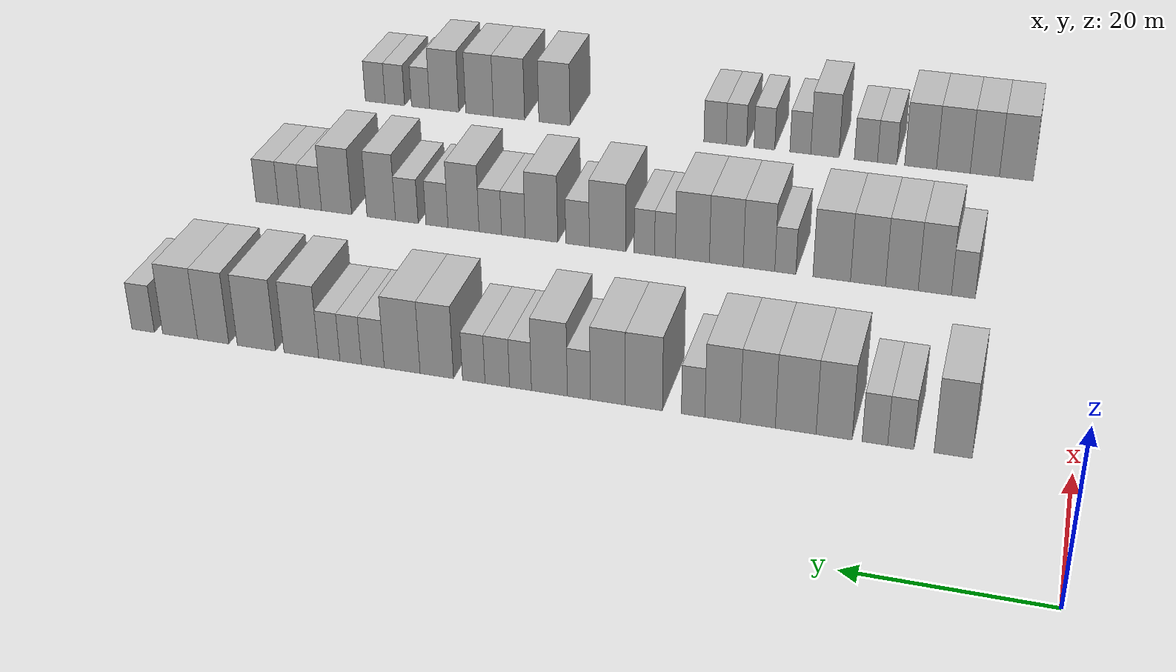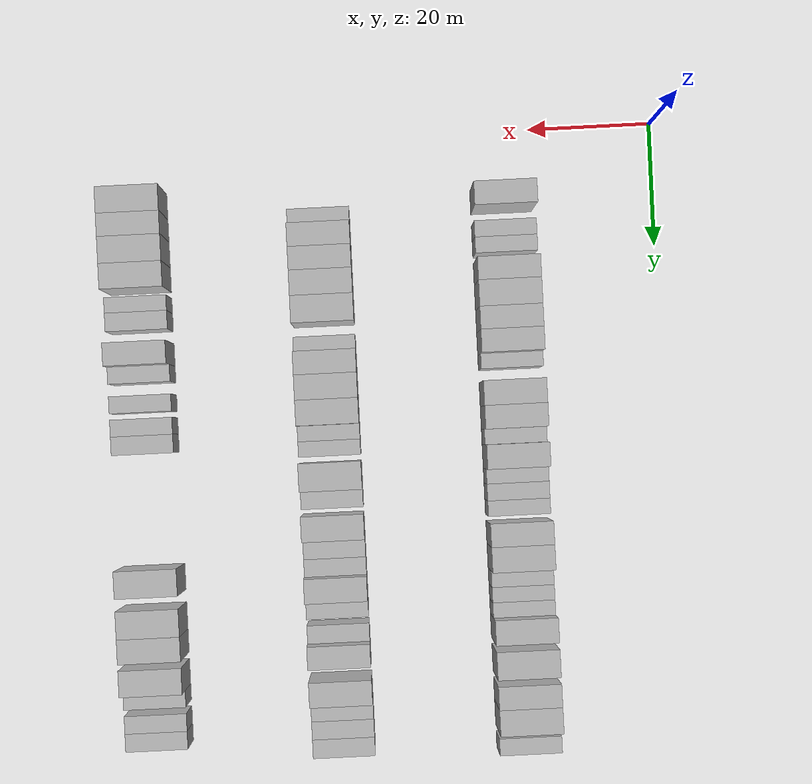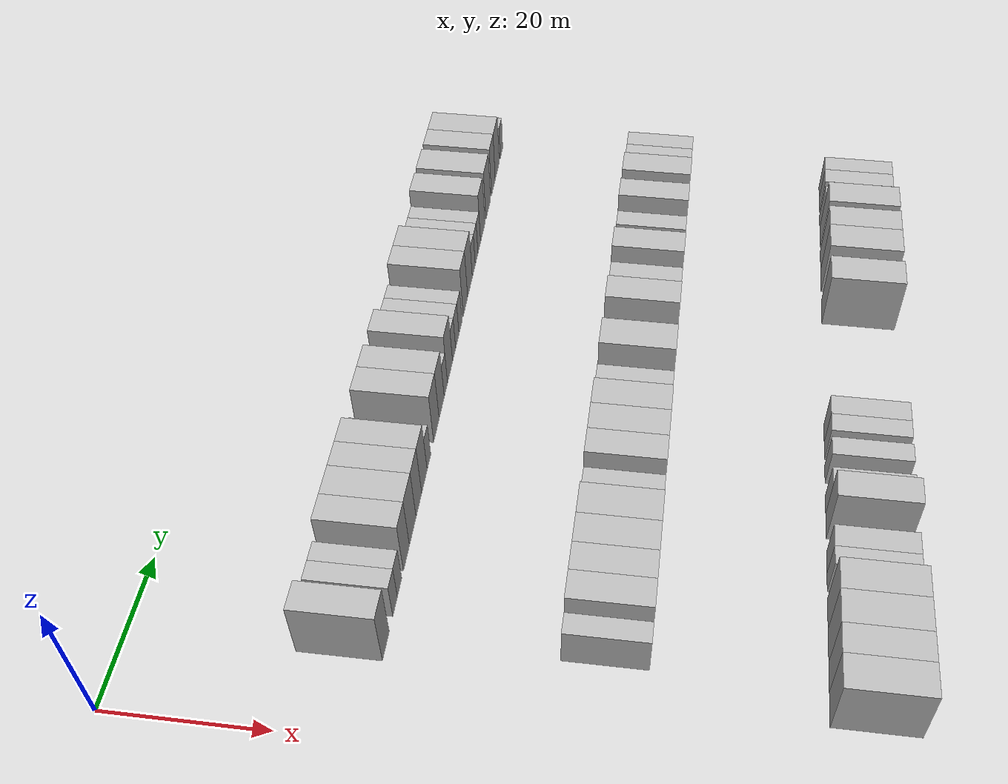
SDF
<sdf version="1.6">
 <world name="default">
  <model name="building_63">
   <static>1</static>
   <pose>25.0000 11.6347 0 0.000000 0.000000 0.000000</pose>
   <link name="link">
    <pose>0 0 4.50 0 0 0</pose>
    <collision name="collision"><geometry><box><size>10.0000 3.7601 9.0000</size></box></geometry></collision>
    <visual name="visual">
     <cast_shadows>0</cast_shadows>
     <geometry><box><size>10.0000 3.7601 9.0000</size></box></geometry>
     <material>
      <script>
       <uri>model://HANNAS_wall/materials/scripts</uri>
       <uri>model://HANNAS_wall/materials/textures</uri>
       <name>vrc/HANNAS_wall</name>
      </script>
     </material>
    </visual>
   </link>
  </model>
  <model name="building_64">
   <static>1</static>
   <pose>25.0000 16.8259 0 0.000000 0.000000 0.000000</pose>
   <link name="link">
    <pose>0 0 3.00 0 0 0</pose>
    <collision name="collision"><geometry><box><size>10.0000 2.6224 6.0000</size></box></geometry></collision>
    <visual name="visual">
     <cast_shadows>0</cast_shadows>
     <geometry><box><size>10.0000 2.6224 6.0000</size></box></geometry>
     <material>
      <script>
       <uri>model://HANNAS_wall/materials/scripts</uri>
       <uri>model://HANNAS_wall/materials/textures</uri>
       <name>vrc/HANNAS_wall</name>
      </script>
     </material>
    </visual>
   </link>
  </model>
  <model name="building_65">
   <static>1</static>
   <pose>25.0000 19.4246 0 0.000000 0.000000 0.000000</pose>
   <link name="link">
    <pose>0 0 3.00 0 0 0</pose>
    <collision name="collision"><geometry><box><size>10.0000 2.5749 6.0000</size></box></geometry></collision>
    <visual name="visual">
     <cast_shadows>0</cast_shadows>
     <geometry><box><size>10.0000 2.5749 6.0000</size></box></geometry>
     <material>
      <script>
       <uri>model://HANNAS_wall/materials/scripts</uri>
       <uri>model://HANNAS_wall/materials/textures</uri>
       <name>vrc/HANNAS_wall</name>
      </script>
     </material>
    </visual>
   </link>
  </model>
  <model name="building_66">
   <static>1</static>
   <pose>25.0000 23.5431 0 0.000000 0.000000 0.000000</pose>
   <link name="link">
    <pose>0 0 4.50 0 0 0</pose>
    <collision name="collision"><geometry><box><size>10.0000 3.6621 9.0000</size></box></geometry></collision>
    <visual name="visual">
     <cast_shadows>0</cast_shadows>
     <geometry><box><size>10.0000 3.6621 9.0000</size></box></geometry>
     <material>
      <script>
       <uri>model://HANNAS_wall/materials/scripts</uri>
       <uri>model://HANNAS_wall/materials/textures</uri>
       <name>vrc/HANNAS_wall</name>
      </script>
     </material>
    </visual>
   </link>
  </model>
  <model name="building_67">
   <static>1</static>
   <pose>25.0000 27.4623 0 0.000000 0.000000 0.000000</pose>
   <link name="link">
    <pose>0 0 4.50 0 0 0</pose>
    <collision name="collision"><geometry><box><size>10.0000 4.1763 9.0000</size></box></geometry></collision>
    <visual name="visual">
     <cast_shadows>0</cast_shadows>
     <geometry><box><size>10.0000 4.1763 9.0000</size></box></geometry>
     <material>
      <script>
       <uri>model://HANNAS_wall/materials/scripts</uri>
       <uri>model://HANNAS_wall/materials/textures</uri>
       <name>vrc/HANNAS_wall</name>
      </script>
     </material>
    </visual>
   </link>
  </model>
  <model name="building_68">
   <static>1</static>
   <pose>25.0000 31.3696 0 0.000000 0.000000 0.000000</pose>
   <link name="link">
    <pose>0 0 4.50 0 0 0</pose>
    <collision name="collision"><geometry><box><size>10.0000 3.6383 9.0000</size></box></geometry></collision>
    <visual name="visual">
     <cast_shadows>0</cast_shadows>
     <geometry><box><size>10.0000 3.6383 9.0000</size></box></geometry>
     <material>
      <script>
       <uri>model://HANNAS_wall/materials/scripts</uri>
       <uri>model://HANNAS_wall/materials/textures</uri>
       <name>vrc/HANNAS_wall</name>
      </script>
     </material>
    </visual>
   </link>
  </model>
  <model name="building_69">
   <static>1</static>
   <pose>25.0000 35.0305 0 0.000000 0.000000 0.000000</pose>
   <link name="link">
    <pose>0 0 4.50 0 0 0</pose>
    <collision name="collision"><geometry><box><size>10.0000 3.6835 9.0000</size></box></geometry></collision>
    <visual name="visual">
     <cast_shadows>0</cast_shadows>
     <geometry><box><size>10.0000 3.6835 9.0000</size></box></geometry>
     <material>
      <script>
       <uri>model://HANNAS_wall/materials/scripts</uri>
       <uri>model://HANNAS_wall/materials/textures</uri>
       <name>vrc/HANNAS_wall</name>
      </script>
     </material>
    </visual>
   </link>
  </model>
  <model name="building_70">
   <static>1</static>
   <pose>25.0000 38.1041 0 0.000000 0.000000 0.000000</pose>
   <link name="link">
    <pose>0 0 3.00 0 0 0</pose>
    <collision name="collision"><geometry><box><size>10.0000 2.4638 6.0000</size></box></geometry></collision>
    <visual name="visual">
     <cast_shadows>0</cast_shadows>
     <geometry><box><size>10.0000 2.4638 6.0000</size></box></geometry>
     <material>
      <script>
       <uri>model://HANNAS_wall/materials/scripts</uri>
       <uri>model://HANNAS_wall/materials/textures</uri>
       <name>vrc/HANNAS_wall</name>
      </script>
     </material>
    </visual>
   </link>
  </model>
  <model name="building_71">
   <static>1</static>
   <pose>25.0000 43.3074 0 0.000000 0.000000 0.000000</pose>
   <link name="link">
    <pose>0 0 4.50 0 0 0</pose>
    <collision name="collision"><geometry><box><size>10.0000 3.9428 9.0000</size></box></geometry></collision>
    <visual name="visual">
     <cast_shadows>0</cast_shadows>
     <geometry><box><size>10.0000 3.9428 9.0000</size></box></geometry>
     <material>
      <script>
       <uri>model://HANNAS_wall/materials/scripts</uri>
       <uri>model://HANNAS_wall/materials/textures</uri>
       <name>vrc/HANNAS_wall</name>
      </script>
     </material>
    </visual>
   </link>
  </model>
  <model name="building_72">
   <static>1</static>
   <pose>25.0000 47.1563 0 0.000000 0.000000 0.000000</pose>
   <link name="link">
    <pose>0 0 4.50 0 0 0</pose>
    <collision name="collision"><geometry><box><size>10.0000 3.7549 9.0000</size></box></geometry></collision>
    <visual name="visual">
     <cast_shadows>0</cast_shadows>
     <geometry><box><size>10.0000 3.7549 9.0000</size></box></geometry>
     <material>
      <script>
       <uri>model://HANNAS_wall/materials/scripts</uri>
       <uri>model://HANNAS_wall/materials/textures</uri>
       <name>vrc/HANNAS_wall</name>
      </script>
     </material>
    </visual>
   </link>
  </model>
  <model name="building_73">
   <static>1</static>
   <pose>25.0000 50.2749 0 0.000000 0.000000 0.000000</pose>
   <link name="link">
    <pose>0 0 3.00 0 0 0</pose>
    <collision name="collision"><geometry><box><size>10.0000 2.4824 6.0000</size></box></geometry></collision>
    <visual name="visual">
     <cast_shadows>0</cast_shadows>
     <geometry><box><size>10.0000 2.4824 6.0000</size></box></geometry>
     <material>
      <script>
       <uri>model://HANNAS_wall/materials/scripts</uri>
       <uri>model://HANNAS_wall/materials/textures</uri>
       <name>vrc/HANNAS_wall</name>
      </script>
     </material>
    </visual>
   </link>
  </model>
  <model name="building_74">
   <static>1</static>
   <pose>25.0000 53.4746 0 0.000000 0.000000 0.000000</pose>
   <link name="link">
    <pose>0 0 4.50 0 0 0</pose>
    <collision name="collision"><geometry><box><size>10.0000 3.9169 9.0000</size></box></geometry></collision>
    <visual name="visual">
     <cast_shadows>0</cast_shadows>
     <geometry><box><size>10.0000 3.9169 9.0000</size></box></geometry>
     <material>
      <script>
       <uri>model://HANNAS_wall/materials/scripts</uri>
       <uri>model://HANNAS_wall/materials/textures</uri>
       <name>vrc/HANNAS_wall</name>
      </script>
     </material>
    </visual>
   </link>
  </model>
  <model name="building_75">
   <static>1</static>
   <pose>25.0000 56.6359 0 0.000000 0.000000 0.000000</pose>
   <link name="link">
    <pose>0 0 3.00 0 0 0</pose>
    <collision name="collision"><geometry><box><size>10.0000 2.4057 6.0000</size></box></geometry></collision>
    <visual name="visual">
     <cast_shadows>0</cast_shadows>
     <geometry><box><size>10.0000 2.4057 6.0000</size></box></geometry>
     <material>
      <script>
       <uri>model://HANNAS_wall/materials/scripts</uri>
       <uri>model://HANNAS_wall/materials/textures</uri>
       <name>vrc/HANNAS_wall</name>
      </script>
     </material>
    </visual>
   </link>
  </model>
  <model name="building_76">
   <static>1</static>
   <pose>25.0000 59.1966 0 0.000000 0.000000 0.000000</pose>
   <link name="link">
    <pose>0 0 3.00 0 0 0</pose>
    <collision name="collision"><geometry><box><size>10.0000 2.7157 6.0000</size></box></geometry></collision>
    <visual name="visual">
     <cast_shadows>0</cast_shadows>
     <geometry><box><size>10.0000 2.7157 6.0000</size></box></geometry>
     <material>
      <script>
       <uri>model://HANNAS_wall/materials/scripts</uri>
       <uri>model://HANNAS_wall/materials/textures</uri>
       <name>vrc/HANNAS_wall</name>
      </script>
     </material>
    </visual>
   </link>
  </model>
  <model name="building_77">
   <static>1</static>
   <pose>25.0000 61.8009 0 0.000000 0.000000 0.000000</pose>
   <link name="link">
    <pose>0 0 3.00 0 0 0</pose>
    <collision name="collision"><geometry><box><size>10.0000 2.4929 6.0000</size></box></geometry></collision>
    <visual name="visual">
     <cast_shadows>0</cast_shadows>
     <geometry><box><size>10.0000 2.4929 6.0000</size></box></geometry>
     <material>
      <script>
       <uri>model://HANNAS_wall/materials/scripts</uri>
       <uri>model://HANNAS_wall/materials/textures</uri>
       <name>vrc/HANNAS_wall</name>
      </script>
     </material>
    </visual>
   </link>
  </model>
  <model name="building_78">
   <static>1</static>
   <pose>25.0000 65.9230 0 0.000000 0.000000 0.000000</pose>
   <link name="link">
    <pose>0 0 4.50 0 0 0</pose>
    <collision name="collision"><geometry><box><size>10.0000 3.7513 9.0000</size></box></geometry></collision>
    <visual name="visual">
     <cast_shadows>0</cast_shadows>
     <geometry><box><size>10.0000 3.7513 9.0000</size></box></geometry>
     <material>
      <script>
       <uri>model://HANNAS_wall/materials/scripts</uri>
       <uri>model://HANNAS_wall/materials/textures</uri>
       <name>vrc/HANNAS_wall</name>
      </script>
     </material>
    </visual>
   </link>
  </model>
  <model name="building_79">
   <static>1</static>
   <pose>25.0000 69.8228 0 0.000000 0.000000 0.000000</pose>
   <link name="link">
    <pose>0 0 4.50 0 0 0</pose>
    <collision name="collision"><geometry><box><size>10.0000 4.0482 9.0000</size></box></geometry></collision>
    <visual name="visual">
     <cast_shadows>0</cast_shadows>
     <geometry><box><size>10.0000 4.0482 9.0000</size></box></geometry>
     <material>
      <script>
       <uri>model://HANNAS_wall/materials/scripts</uri>
       <uri>model://HANNAS_wall/materials/textures</uri>
       <name>vrc/HANNAS_wall</name>
      </script>
     </material>
    </visual>
   </link>
  </model>
  <model name="building_80">
   <static>1</static>
   <pose>25.0000 73.1573 0 0.000000 0.000000 0.000000</pose>
   <link name="link">
    <pose>0 0 3.00 0 0 0</pose>
    <collision name="collision"><geometry><box><size>10.0000 2.6209 6.0000</size></box></geometry></collision>
    <visual name="visual">
     <cast_shadows>0</cast_shadows>
     <geometry><box><size>10.0000 2.6209 6.0000</size></box></geometry>
     <material>
      <script>
       <uri>model://HANNAS_wall/materials/scripts</uri>
       <uri>model://HANNAS_wall/materials/textures</uri>
       <name>vrc/HANNAS_wall</name>
      </script>
     </material>
    </visual>
   </link>
  </model>
  <model name="building_81">
   <static>1</static>
   <pose>25.0000 75.6925 0 0.000000 0.000000 0.000000</pose>
   <link name="link">
    <pose>0 0 3.00 0 0 0</pose>
    <collision name="collision"><geometry><box><size>10.0000 2.4494 6.0000</size></box></geometry></collision>
    <visual name="visual">
     <cast_shadows>0</cast_shadows>
     <geometry><box><size>10.0000 2.4494 6.0000</size></box></geometry>
     <material>
      <script>
       <uri>model://HANNAS_wall/materials/scripts</uri>
       <uri>model://HANNAS_wall/materials/textures</uri>
       <name>vrc/HANNAS_wall</name>
      </script>
     </material>
    </visual>
   </link>
  </model>
  <model name="building_82">
   <static>1</static>
   <pose>25.0000 78.1473 0 0.000000 0.000000 0.000000</pose>
   <link name="link">
    <pose>0 0 3.00 0 0 0</pose>
    <collision name="collision"><geometry><box><size>10.0000 2.4601 6.0000</size></box></geometry></collision>
    <visual name="visual">
     <cast_shadows>0</cast_shadows>
     <geometry><box><size>10.0000 2.4601 6.0000</size></box></geometry>
     <material>
      <script>
       <uri>model://HANNAS_wall/materials/scripts</uri>
       <uri>model://HANNAS_wall/materials/textures</uri>
       <name>vrc/HANNAS_wall</name>
      </script>
     </material>
    </visual>
   </link>
  </model>
  <model name="building_83">
   <static>1</static>
   <pose>25.0000 81.3884 0 0.000000 0.000000 0.000000</pose>
   <link name="link">
    <pose>0 0 4.50 0 0 0</pose>
    <collision name="collision"><geometry><box><size>10.0000 4.0221 9.0000</size></box></geometry></collision>
    <visual name="visual">
     <cast_shadows>0</cast_shadows>
     <geometry><box><size>10.0000 4.0221 9.0000</size></box></geometry>
     <material>
      <script>
       <uri>model://HANNAS_wall/materials/scripts</uri>
       <uri>model://HANNAS_wall/materials/textures</uri>
       <name>vrc/HANNAS_wall</name>
      </script>
     </material>
    </visual>
   </link>
  </model>
  <model name="building_84">
   <static>1</static>
   <pose>25.0000 86.6411 0 0.000000 0.000000 0.000000</pose>
   <link name="link">
    <pose>0 0 4.50 0 0 0</pose>
    <collision name="collision"><geometry><box><size>10.0000 4.4832 9.0000</size></box></geometry></collision>
    <visual name="visual">
     <cast_shadows>0</cast_shadows>
     <geometry><box><size>10.0000 4.4832 9.0000</size></box></geometry>
     <material>
      <script>
       <uri>model://HANNAS_wall/materials/scripts</uri>
       <uri>model://HANNAS_wall/materials/textures</uri>
       <name>vrc/HANNAS_wall</name>
      </script>
     </material>
    </visual>
   </link>
  </model>
  <model name="building_85">
   <static>1</static>
   <pose>25.0000 91.7443 0 0.000000 0.000000 0.000000</pose>
   <link name="link">
    <pose>0 0 4.50 0 0 0</pose>
    <collision name="collision"><geometry><box><size>10.0000 3.7233 9.0000</size></box></geometry></collision>
    <visual name="visual">
     <cast_shadows>0</cast_shadows>
     <geometry><box><size>10.0000 3.7233 9.0000</size></box></geometry>
     <material>
      <script>
       <uri>model://HANNAS_wall/materials/scripts</uri>
       <uri>model://HANNAS_wall/materials/textures</uri>
       <name>vrc/HANNAS_wall</name>
      </script>
     </material>
    </visual>
   </link>
  </model>
  <model name="building_86">
   <static>1</static>
   <pose>25.0000 95.6959 0 0.000000 0.000000 0.000000</pose>
   <link name="link">
    <pose>0 0 4.50 0 0 0</pose>
    <collision name="collision"><geometry><box><size>10.0000 4.1798 9.0000</size></box></geometry></collision>
    <visual name="visual">
     <cast_shadows>0</cast_shadows>
     <geometry><box><size>10.0000 4.1798 9.0000</size></box></geometry>
     <material>
      <script>
       <uri>model://HANNAS_wall/materials/scripts</uri>
       <uri>model://HANNAS_wall/materials/textures</uri>
       <name>vrc/HANNAS_wall</name>
      </script>
     </material>
    </visual>
   </link>
  </model>
  <model name="building_87">
   <static>1</static>
   <pose>25.0000 100.1499 0 0.000000 0.000000 0.000000</pose>
   <link name="link">
    <pose>0 0 3.00 0 0 0</pose>
    <collision name="collision"><geometry><box><size>10.0000 2.7283 6.0000</size></box></geometry></collision>
    <visual name="visual">
     <cast_shadows>0</cast_shadows>
     <geometry><box><size>10.0000 2.7283 6.0000</size></box></geometry>
     <material>
      <script>
       <uri>model://HANNAS_wall/materials/scripts</uri>
       <uri>model://HANNAS_wall/materials/textures</uri>
       <name>vrc/HANNAS_wall</name>
      </script>
     </material>
    </visual>
   </link>
  </model>
  <model name="building_201">
   <static>1</static>
   <pose>55.0000 13.5459 0 0.000000 0.000000 0.000000</pose>
   <link name="link">
    <pose>0 0 3.00 0 0 0</pose>
    <collision name="collision"><geometry><box><size>10.0000 2.7010 6.0000</size></box></geometry></collision>
    <visual name="visual">
     <cast_shadows>0</cast_shadows>
     <geometry><box><size>10.0000 2.7010 6.0000</size></box></geometry>
     <material>
      <script>
       <uri>model://HANNAS_wall/materials/scripts</uri>
       <uri>model://HANNAS_wall/materials/textures</uri>
       <name>vrc/HANNAS_wall</name>
      </script>
     </material>
    </visual>
   </link>
  </model>
  <model name="building_202">
   <static>1</static>
   <pose>55.0000 16.7719 0 0.000000 0.000000 0.000000</pose>
   <link name="link">
    <pose>0 0 4.50 0 0 0</pose>
    <collision name="collision"><geometry><box><size>10.0000 3.7510 9.0000</size></box></geometry></collision>
    <visual name="visual">
     <cast_shadows>0</cast_shadows>
     <geometry><box><size>10.0000 3.7510 9.0000</size></box></geometry>
     <material>
      <script>
       <uri>model://HANNAS_wall/materials/scripts</uri>
       <uri>model://HANNAS_wall/materials/textures</uri>
       <name>vrc/HANNAS_wall</name>
      </script>
     </material>
    </visual>
   </link>
  </model>
  <model name="building_203">
   <static>1</static>
   <pose>55.0000 20.5124 0 0.000000 0.000000 0.000000</pose>
   <link name="link">
    <pose>0 0 4.50 0 0 0</pose>
    <collision name="collision"><geometry><box><size>10.0000 3.7301 9.0000</size></box></geometry></collision>
    <visual name="visual">
     <cast_shadows>0</cast_shadows>
     <geometry><box><size>10.0000 3.7301 9.0000</size></box></geometry>
     <material>
      <script>
       <uri>model://HANNAS_wall/materials/scripts</uri>
       <uri>model://HANNAS_wall/materials/textures</uri>
       <name>vrc/HANNAS_wall</name>
      </script>
     </material>
    </visual>
   </link>
  </model>
  <model name="building_204">
   <static>1</static>
   <pose>55.0000 24.3906 0 0.000000 0.000000 0.000000</pose>
   <link name="link">
    <pose>0 0 4.50 0 0 0</pose>
    <collision name="collision"><geometry><box><size>10.0000 4.0262 9.0000</size></box></geometry></collision>
    <visual name="visual">
     <cast_shadows>0</cast_shadows>
     <geometry><box><size>10.0000 4.0262 9.0000</size></box></geometry>
     <material>
      <script>
       <uri>model://HANNAS_wall/materials/scripts</uri>
       <uri>model://HANNAS_wall/materials/textures</uri>
       <name>vrc/HANNAS_wall</name>
      </script>
     </material>
    </visual>
   </link>
  </model>
  <model name="building_205">
   <static>1</static>
   <pose>55.0000 28.5856 0 0.000000 0.000000 0.000000</pose>
   <link name="link">
    <pose>0 0 4.50 0 0 0</pose>
    <collision name="collision"><geometry><box><size>10.0000 4.3638 9.0000</size></box></geometry></collision>
    <visual name="visual">
     <cast_shadows>0</cast_shadows>
     <geometry><box><size>10.0000 4.3638 9.0000</size></box></geometry>
     <material>
      <script>
       <uri>model://HANNAS_wall/materials/scripts</uri>
       <uri>model://HANNAS_wall/materials/textures</uri>
       <name>vrc/HANNAS_wall</name>
      </script>
     </material>
    </visual>
   </link>
  </model>
  <model name="building_206">
   <static>1</static>
   <pose>55.0000 34.0003 0 0.000000 0.000000 0.000000</pose>
   <link name="link">
    <pose>0 0 3.00 0 0 0</pose>
    <collision name="collision"><geometry><box><size>10.0000 2.4656 6.0000</size></box></geometry></collision>
    <visual name="visual">
     <cast_shadows>0</cast_shadows>
     <geometry><box><size>10.0000 2.4656 6.0000</size></box></geometry>
     <material>
      <script>
       <uri>model://HANNAS_wall/materials/scripts</uri>
       <uri>model://HANNAS_wall/materials/textures</uri>
       <name>vrc/HANNAS_wall</name>
      </script>
     </material>
    </visual>
   </link>
  </model>
  <model name="building_207">
   <static>1</static>
   <pose>55.0000 37.1039 0 0.000000 0.000000 0.000000</pose>
   <link name="link">
    <pose>0 0 4.50 0 0 0</pose>
    <collision name="collision"><geometry><box><size>10.0000 3.7415 9.0000</size></box></geometry></collision>
    <visual name="visual">
     <cast_shadows>0</cast_shadows>
     <geometry><box><size>10.0000 3.7415 9.0000</size></box></geometry>
     <material>
      <script>
       <uri>model://HANNAS_wall/materials/scripts</uri>
       <uri>model://HANNAS_wall/materials/textures</uri>
       <name>vrc/HANNAS_wall</name>
      </script>
     </material>
    </visual>
   </link>
  </model>
  <model name="building_208">
   <static>1</static>
   <pose>55.0000 40.9870 0 0.000000 0.000000 0.000000</pose>
   <link name="link">
    <pose>0 0 4.50 0 0 0</pose>
    <collision name="collision"><geometry><box><size>10.0000 4.0248 9.0000</size></box></geometry></collision>
    <visual name="visual">
     <cast_shadows>0</cast_shadows>
     <geometry><box><size>10.0000 4.0248 9.0000</size></box></geometry>
     <material>
      <script>
       <uri>model://HANNAS_wall/materials/scripts</uri>
       <uri>model://HANNAS_wall/materials/textures</uri>
       <name>vrc/HANNAS_wall</name>
      </script>
     </material>
    </visual>
   </link>
  </model>
  <model name="building_209">
   <static>1</static>
   <pose>55.0000 45.0407 0 0.000000 0.000000 0.000000</pose>
   <link name="link">
    <pose>0 0 4.50 0 0 0</pose>
    <collision name="collision"><geometry><box><size>10.0000 4.0825 9.0000</size></box></geometry></collision>
    <visual name="visual">
     <cast_shadows>0</cast_shadows>
     <geometry><box><size>10.0000 4.0825 9.0000</size></box></geometry>
     <material>
      <script>
       <uri>model://HANNAS_wall/materials/scripts</uri>
       <uri>model://HANNAS_wall/materials/textures</uri>
       <name>vrc/HANNAS_wall</name>
      </script>
     </material>
    </visual>
   </link>
  </model>
  <model name="building_210">
   <static>1</static>
   <pose>55.0000 48.3329 0 0.000000 0.000000 0.000000</pose>
   <link name="link">
    <pose>0 0 3.00 0 0 0</pose>
    <collision name="collision"><geometry><box><size>10.0000 2.5018 6.0000</size></box></geometry></collision>
    <visual name="visual">
     <cast_shadows>0</cast_shadows>
     <geometry><box><size>10.0000 2.5018 6.0000</size></box></geometry>
     <material>
      <script>
       <uri>model://HANNAS_wall/materials/scripts</uri>
       <uri>model://HANNAS_wall/materials/textures</uri>
       <name>vrc/HANNAS_wall</name>
      </script>
     </material>
    </visual>
   </link>
  </model>
  <model name="building_211">
   <static>1</static>
   <pose>55.0000 50.8295 0 0.000000 0.000000 0.000000</pose>
   <link name="link">
    <pose>0 0 3.00 0 0 0</pose>
    <collision name="collision"><geometry><box><size>10.0000 2.4913 6.0000</size></box></geometry></collision>
    <visual name="visual">
     <cast_shadows>0</cast_shadows>
     <geometry><box><size>10.0000 2.4913 6.0000</size></box></geometry>
     <material>
      <script>
       <uri>model://HANNAS_wall/materials/scripts</uri>
       <uri>model://HANNAS_wall/materials/textures</uri>
       <name>vrc/HANNAS_wall</name>
      </script>
     </material>
    </visual>
   </link>
  </model>
  <model name="building_212">
   <static>1</static>
   <pose>55.0000 55.3235 0 0.000000 0.000000 0.000000</pose>
   <link name="link">
    <pose>0 0 4.50 0 0 0</pose>
    <collision name="collision"><geometry><box><size>10.0000 4.4968 9.0000</size></box></geometry></collision>
    <visual name="visual">
     <cast_shadows>0</cast_shadows>
     <geometry><box><size>10.0000 4.4968 9.0000</size></box></geometry>
     <material>
      <script>
       <uri>model://HANNAS_wall/materials/scripts</uri>
       <uri>model://HANNAS_wall/materials/textures</uri>
       <name>vrc/HANNAS_wall</name>
      </script>
     </material>
    </visual>
   </link>
  </model>
  <model name="building_213">
   <static>1</static>
   <pose>55.0000 59.0298 0 0.000000 0.000000 0.000000</pose>
   <link name="link">
    <pose>0 0 3.00 0 0 0</pose>
    <collision name="collision"><geometry><box><size>10.0000 2.9156 6.0000</size></box></geometry></collision>
    <visual name="visual">
     <cast_shadows>0</cast_shadows>
     <geometry><box><size>10.0000 2.9156 6.0000</size></box></geometry>
     <material>
      <script>
       <uri>model://HANNAS_wall/materials/scripts</uri>
       <uri>model://HANNAS_wall/materials/textures</uri>
       <name>vrc/HANNAS_wall</name>
      </script>
     </material>
    </visual>
   </link>
  </model>
  <model name="building_214">
   <static>1</static>
   <pose>55.0000 63.5155 0 0.000000 0.000000 0.000000</pose>
   <link name="link">
    <pose>0 0 4.50 0 0 0</pose>
    <collision name="collision"><geometry><box><size>10.0000 4.0559 9.0000</size></box></geometry></collision>
    <visual name="visual">
     <cast_shadows>0</cast_shadows>
     <geometry><box><size>10.0000 4.0559 9.0000</size></box></geometry>
     <material>
      <script>
       <uri>model://HANNAS_wall/materials/scripts</uri>
       <uri>model://HANNAS_wall/materials/textures</uri>
       <name>vrc/HANNAS_wall</name>
      </script>
     </material>
    </visual>
   </link>
  </model>
  <model name="building_215">
   <static>1</static>
   <pose>55.0000 67.0353 0 0.000000 0.000000 0.000000</pose>
   <link name="link">
    <pose>0 0 3.00 0 0 0</pose>
    <collision name="collision"><geometry><box><size>10.0000 2.9835 6.0000</size></box></geometry></collision>
    <visual name="visual">
     <cast_shadows>0</cast_shadows>
     <geometry><box><size>10.0000 2.9835 6.0000</size></box></geometry>
     <material>
      <script>
       <uri>model://HANNAS_wall/materials/scripts</uri>
       <uri>model://HANNAS_wall/materials/textures</uri>
       <name>vrc/HANNAS_wall</name>
      </script>
     </material>
    </visual>
   </link>
  </model>
  <model name="building_216">
   <static>1</static>
   <pose>55.0000 69.9450 0 0.000000 0.000000 0.000000</pose>
   <link name="link">
    <pose>0 0 3.00 0 0 0</pose>
    <collision name="collision"><geometry><box><size>10.0000 2.8358 6.0000</size></box></geometry></collision>
    <visual name="visual">
     <cast_shadows>0</cast_shadows>
     <geometry><box><size>10.0000 2.8358 6.0000</size></box></geometry>
     <material>
      <script>
       <uri>model://HANNAS_wall/materials/scripts</uri>
       <uri>model://HANNAS_wall/materials/textures</uri>
       <name>vrc/HANNAS_wall</name>
      </script>
     </material>
    </visual>
   </link>
  </model>
  <model name="building_217">
   <static>1</static>
   <pose>55.0000 73.3389 0 0.000000 0.000000 0.000000</pose>
   <link name="link">
    <pose>0 0 4.50 0 0 0</pose>
    <collision name="collision"><geometry><box><size>10.0000 3.9521 9.0000</size></box></geometry></collision>
    <visual name="visual">
     <cast_shadows>0</cast_shadows>
     <geometry><box><size>10.0000 3.9521 9.0000</size></box></geometry>
     <material>
      <script>
       <uri>model://HANNAS_wall/materials/scripts</uri>
       <uri>model://HANNAS_wall/materials/textures</uri>
       <name>vrc/HANNAS_wall</name>
      </script>
     </material>
    </visual>
   </link>
  </model>
  <model name="building_218">
   <static>1</static>
   <pose>55.0000 76.7329 0 0.000000 0.000000 0.000000</pose>
   <link name="link">
    <pose>0 0 3.00 0 0 0</pose>
    <collision name="collision"><geometry><box><size>10.0000 2.8358 6.0000</size></box></geometry></collision>
    <visual name="visual">
     <cast_shadows>0</cast_shadows>
     <geometry><box><size>10.0000 2.8358 6.0000</size></box></geometry>
     <material>
      <script>
       <uri>model://HANNAS_wall/materials/scripts</uri>
       <uri>model://HANNAS_wall/materials/textures</uri>
       <name>vrc/HANNAS_wall</name>
      </script>
     </material>
    </visual>
   </link>
  </model>
  <model name="building_219">
   <static>1</static>
   <pose>55.0000 80.6168 0 0.000000 0.000000 0.000000</pose>
   <link name="link">
    <pose>0 0 3.00 0 0 0</pose>
    <collision name="collision"><geometry><box><size>10.0000 2.9320 6.0000</size></box></geometry></collision>
    <visual name="visual">
     <cast_shadows>0</cast_shadows>
     <geometry><box><size>10.0000 2.9320 6.0000</size></box></geometry>
     <material>
      <script>
       <uri>model://HANNAS_wall/materials/scripts</uri>
       <uri>model://HANNAS_wall/materials/textures</uri>
       <name>vrc/HANNAS_wall</name>
      </script>
     </material>
    </visual>
   </link>
  </model>
  <model name="building_220">
   <static>1</static>
   <pose>55.0000 83.9354 0 0.000000 0.000000 0.000000</pose>
   <link name="link">
    <pose>0 0 4.50 0 0 0</pose>
    <collision name="collision"><geometry><box><size>10.0000 3.7052 9.0000</size></box></geometry></collision>
    <visual name="visual">
     <cast_shadows>0</cast_shadows>
     <geometry><box><size>10.0000 3.7052 9.0000</size></box></geometry>
     <material>
      <script>
       <uri>model://HANNAS_wall/materials/scripts</uri>
       <uri>model://HANNAS_wall/materials/textures</uri>
       <name>vrc/HANNAS_wall</name>
      </script>
     </material>
    </visual>
   </link>
  </model>
  <model name="building_221">
   <static>1</static>
   <pose>55.0000 89.7722 0 0.000000 0.000000 0.000000</pose>
   <link name="link">
    <pose>0 0 4.50 0 0 0</pose>
    <collision name="collision"><geometry><box><size>10.0000 3.9684 9.0000</size></box></geometry></collision>
    <visual name="visual">
     <cast_shadows>0</cast_shadows>
     <geometry><box><size>10.0000 3.9684 9.0000</size></box></geometry>
     <material>
      <script>
       <uri>model://HANNAS_wall/materials/scripts</uri>
       <uri>model://HANNAS_wall/materials/textures</uri>
       <name>vrc/HANNAS_wall</name>
      </script>
     </material>
    </visual>
   </link>
  </model>
  <model name="building_222">
   <static>1</static>
   <pose>55.0000 93.1732 0 0.000000 0.000000 0.000000</pose>
   <link name="link">
    <pose>0 0 3.00 0 0 0</pose>
    <collision name="collision"><geometry><box><size>10.0000 2.8336 6.0000</size></box></geometry></collision>
    <visual name="visual">
     <cast_shadows>0</cast_shadows>
     <geometry><box><size>10.0000 2.8336 6.0000</size></box></geometry>
     <material>
      <script>
       <uri>model://HANNAS_wall/materials/scripts</uri>
       <uri>model://HANNAS_wall/materials/textures</uri>
       <name>vrc/HANNAS_wall</name>
      </script>
     </material>
    </visual>
   </link>
  </model>
  <model name="building_223">
   <static>1</static>
   <pose>55.0000 96.0388 0 0.000000 0.000000 0.000000</pose>
   <link name="link">
    <pose>0 0 3.00 0 0 0</pose>
    <collision name="collision"><geometry><box><size>10.0000 2.8976 6.0000</size></box></geometry></collision>
    <visual name="visual">
     <cast_shadows>0</cast_shadows>
     <geometry><box><size>10.0000 2.8976 6.0000</size></box></geometry>
     <material>
      <script>
       <uri>model://HANNAS_wall/materials/scripts</uri>
       <uri>model://HANNAS_wall/materials/textures</uri>
       <name>vrc/HANNAS_wall</name>
      </script>
     </material>
    </visual>
   </link>
  </model>
  <model name="building_224">
   <static>1</static>
   <pose>55.0000 98.9863 0 0.000000 0.000000 0.000000</pose>
   <link name="link">
    <pose>0 0 3.00 0 0 0</pose>
    <collision name="collision"><geometry><box><size>10.0000 2.9974 6.0000</size></box></geometry></collision>
    <visual name="visual">
     <cast_shadows>0</cast_shadows>
     <geometry><box><size>10.0000 2.9974 6.0000</size></box></geometry>
     <material>
      <script>
       <uri>model://HANNAS_wall/materials/scripts</uri>
       <uri>model://HANNAS_wall/materials/textures</uri>
       <name>vrc/HANNAS_wall</name>
      </script>
     </material>
    </visual>
   </link>
  </model>
  <model name="building_337">
   <static>1</static>
   <pose>85.0000 9.7926 0 0.000000 0.000000 0.000000</pose>
   <link name="link">
    <pose>0 0 4.50 0 0 0</pose>
    <collision name="collision"><geometry><box><size>10.0000 4.2167 9.0000</size></box></geometry></collision>
    <visual name="visual">
     <cast_shadows>0</cast_shadows>
     <geometry><box><size>10.0000 4.2167 9.0000</size></box></geometry>
     <material>
      <script>
       <uri>model://HANNAS_wall/materials/scripts</uri>
       <uri>model://HANNAS_wall/materials/textures</uri>
       <name>vrc/HANNAS_wall</name>
      </script>
     </material>
    </visual>
   </link>
  </model>
  <model name="building_338">
   <static>1</static>
   <pose>85.0000 13.7431 0 0.000000 0.000000 0.000000</pose>
   <link name="link">
    <pose>0 0 4.50 0 0 0</pose>
    <collision name="collision"><geometry><box><size>10.0000 3.6843 9.0000</size></box></geometry></collision>
    <visual name="visual">
     <cast_shadows>0</cast_shadows>
     <geometry><box><size>10.0000 3.6843 9.0000</size></box></geometry>
     <material>
      <script>
       <uri>model://HANNAS_wall/materials/scripts</uri>
       <uri>model://HANNAS_wall/materials/textures</uri>
       <name>vrc/HANNAS_wall</name>
      </script>
     </material>
    </visual>
   </link>
  </model>
  <model name="building_339">
   <static>1</static>
   <pose>85.0000 17.7213 0 0.000000 0.000000 0.000000</pose>
   <link name="link">
    <pose>0 0 4.50 0 0 0</pose>
    <collision name="collision"><geometry><box><size>10.0000 4.2721 9.0000</size></box></geometry></collision>
    <visual name="visual">
     <cast_shadows>0</cast_shadows>
     <geometry><box><size>10.0000 4.2721 9.0000</size></box></geometry>
     <material>
      <script>
       <uri>model://HANNAS_wall/materials/scripts</uri>
       <uri>model://HANNAS_wall/materials/textures</uri>
       <name>vrc/HANNAS_wall</name>
      </script>
     </material>
    </visual>
   </link>
  </model>
  <model name="building_340">
   <static>1</static>
   <pose>85.0000 21.8931 0 0.000000 0.000000 0.000000</pose>
   <link name="link">
    <pose>0 0 4.50 0 0 0</pose>
    <collision name="collision"><geometry><box><size>10.0000 4.0715 9.0000</size></box></geometry></collision>
    <visual name="visual">
     <cast_shadows>0</cast_shadows>
     <geometry><box><size>10.0000 4.0715 9.0000</size></box></geometry>
     <material>
      <script>
       <uri>model://HANNAS_wall/materials/scripts</uri>
       <uri>model://HANNAS_wall/materials/textures</uri>
       <name>vrc/HANNAS_wall</name>
      </script>
     </material>
    </visual>
   </link>
  </model>
  <model name="building_341">
   <static>1</static>
   <pose>85.0000 26.1823 0 0.000000 0.000000 0.000000</pose>
   <link name="link">
    <pose>0 0 3.00 0 0 0</pose>
    <collision name="collision"><geometry><box><size>10.0000 2.5070 6.0000</size></box></geometry></collision>
    <visual name="visual">
     <cast_shadows>0</cast_shadows>
     <geometry><box><size>10.0000 2.5070 6.0000</size></box></geometry>
     <material>
      <script>
       <uri>model://HANNAS_wall/materials/scripts</uri>
       <uri>model://HANNAS_wall/materials/textures</uri>
       <name>vrc/HANNAS_wall</name>
      </script>
     </material>
    </visual>
   </link>
  </model>
  <model name="building_342">
   <static>1</static>
   <pose>85.0000 28.9290 0 0.000000 0.000000 0.000000</pose>
   <link name="link">
    <pose>0 0 3.00 0 0 0</pose>
    <collision name="collision"><geometry><box><size>10.0000 2.9864 6.0000</size></box></geometry></collision>
    <visual name="visual">
     <cast_shadows>0</cast_shadows>
     <geometry><box><size>10.0000 2.9864 6.0000</size></box></geometry>
     <material>
      <script>
       <uri>model://HANNAS_wall/materials/scripts</uri>
       <uri>model://HANNAS_wall/materials/textures</uri>
       <name>vrc/HANNAS_wall</name>
      </script>
     </material>
    </visual>
   </link>
  </model>
  <model name="building_343">
   <static>1</static>
   <pose>85.0000 34.2737 0 0.000000 0.000000 0.000000</pose>
   <link name="link">
    <pose>0 0 4.50 0 0 0</pose>
    <collision name="collision"><geometry><box><size>10.0000 3.7030 9.0000</size></box></geometry></collision>
    <visual name="visual">
     <cast_shadows>0</cast_shadows>
     <geometry><box><size>10.0000 3.7030 9.0000</size></box></geometry>
     <material>
      <script>
       <uri>model://HANNAS_wall/materials/scripts</uri>
       <uri>model://HANNAS_wall/materials/textures</uri>
       <name>vrc/HANNAS_wall</name>
      </script>
     </material>
    </visual>
   </link>
  </model>
  <model name="building_344">
   <static>1</static>
   <pose>85.0000 37.4970 0 0.000000 0.000000 0.000000</pose>
   <link name="link">
    <pose>0 0 3.00 0 0 0</pose>
    <collision name="collision"><geometry><box><size>10.0000 2.7436 6.0000</size></box></geometry></collision>
    <visual name="visual">
     <cast_shadows>0</cast_shadows>
     <geometry><box><size>10.0000 2.7436 6.0000</size></box></geometry>
     <material>
      <script>
       <uri>model://HANNAS_wall/materials/scripts</uri>
       <uri>model://HANNAS_wall/materials/textures</uri>
       <name>vrc/HANNAS_wall</name>
      </script>
     </material>
    </visual>
   </link>
  </model>
  <model name="building_345">
   <static>1</static>
   <pose>85.0000 42.2433 0 0.000000 0.000000 0.000000</pose>
   <link name="link">
    <pose>0 0 3.00 0 0 0</pose>
    <collision name="collision"><geometry><box><size>10.0000 2.7490 6.0000</size></box></geometry></collision>
    <visual name="visual">
     <cast_shadows>0</cast_shadows>
     <geometry><box><size>10.0000 2.7490 6.0000</size></box></geometry>
     <material>
      <script>
       <uri>model://HANNAS_wall/materials/scripts</uri>
       <uri>model://HANNAS_wall/materials/textures</uri>
       <name>vrc/HANNAS_wall</name>
      </script>
     </material>
    </visual>
   </link>
  </model>
  <model name="building_346">
   <static>1</static>
   <pose>85.0000 45.9824 0 0.000000 0.000000 0.000000</pose>
   <link name="link">
    <pose>0 0 3.00 0 0 0</pose>
    <collision name="collision"><geometry><box><size>10.0000 2.7292 6.0000</size></box></geometry></collision>
    <visual name="visual">
     <cast_shadows>0</cast_shadows>
     <geometry><box><size>10.0000 2.7292 6.0000</size></box></geometry>
     <material>
      <script>
       <uri>model://HANNAS_wall/materials/scripts</uri>
       <uri>model://HANNAS_wall/materials/textures</uri>
       <name>vrc/HANNAS_wall</name>
      </script>
     </material>
    </visual>
   </link>
  </model>
  <model name="building_347">
   <static>1</static>
   <pose>85.0000 48.8416 0 0.000000 0.000000 0.000000</pose>
   <link name="link">
    <pose>0 0 3.00 0 0 0</pose>
    <collision name="collision"><geometry><box><size>10.0000 2.9893 6.0000</size></box></geometry></collision>
    <visual name="visual">
     <cast_shadows>0</cast_shadows>
     <geometry><box><size>10.0000 2.9893 6.0000</size></box></geometry>
     <material>
      <script>
       <uri>model://HANNAS_wall/materials/scripts</uri>
       <uri>model://HANNAS_wall/materials/textures</uri>
       <name>vrc/HANNAS_wall</name>
      </script>
     </material>
    </visual>
   </link>
  </model>
  <model name="building_348">
   <static>1</static>
   <pose>85.0000 70.8760 0 0.000000 0.000000 0.000000</pose>
   <link name="link">
    <pose>0 0 4.50 0 0 0</pose>
    <collision name="collision"><geometry><box><size>10.0000 4.3599 9.0000</size></box></geometry></collision>
    <visual name="visual">
     <cast_shadows>0</cast_shadows>
     <geometry><box><size>10.0000 4.3599 9.0000</size></box></geometry>
     <material>
      <script>
       <uri>model://HANNAS_wall/materials/scripts</uri>
       <uri>model://HANNAS_wall/materials/textures</uri>
       <name>vrc/HANNAS_wall</name>
      </script>
     </material>
    </visual>
   </link>
  </model>
  <model name="building_349">
   <static>1</static>
   <pose>85.0000 77.2725 0 0.000000 0.000000 0.000000</pose>
   <link name="link">
    <pose>0 0 4.50 0 0 0</pose>
    <collision name="collision"><geometry><box><size>10.0000 4.4331 9.0000</size></box></geometry></collision>
    <visual name="visual">
     <cast_shadows>0</cast_shadows>
     <geometry><box><size>10.0000 4.4331 9.0000</size></box></geometry>
     <material>
      <script>
       <uri>model://HANNAS_wall/materials/scripts</uri>
       <uri>model://HANNAS_wall/materials/textures</uri>
       <name>vrc/HANNAS_wall</name>
      </script>
     </material>
    </visual>
   </link>
  </model>
  <model name="building_350">
   <static>1</static>
   <pose>85.0000 81.4564 0 0.000000 0.000000 0.000000</pose>
   <link name="link">
    <pose>0 0 4.50 0 0 0</pose>
    <collision name="collision"><geometry><box><size>10.0000 3.9346 9.0000</size></box></geometry></collision>
    <visual name="visual">
     <cast_shadows>0</cast_shadows>
     <geometry><box><size>10.0000 3.9346 9.0000</size></box></geometry>
     <material>
      <script>
       <uri>model://HANNAS_wall/materials/scripts</uri>
       <uri>model://HANNAS_wall/materials/textures</uri>
       <name>vrc/HANNAS_wall</name>
      </script>
     </material>
    </visual>
   </link>
  </model>
  <model name="building_351">
   <static>1</static>
   <pose>85.0000 86.5183 0 0.000000 0.000000 0.000000</pose>
   <link name="link">
    <pose>0 0 4.50 0 0 0</pose>
    <collision name="collision"><geometry><box><size>10.0000 4.1892 9.0000</size></box></geometry></collision>
    <visual name="visual">
     <cast_shadows>0</cast_shadows>
     <geometry><box><size>10.0000 4.1892 9.0000</size></box></geometry>
     <material>
      <script>
       <uri>model://HANNAS_wall/materials/scripts</uri>
       <uri>model://HANNAS_wall/materials/textures</uri>
       <name>vrc/HANNAS_wall</name>
      </script>
     </material>
    </visual>
   </link>
  </model>
  <model name="building_352">
   <static>1</static>
   <pose>85.0000 89.9337 0 0.000000 0.000000 0.000000</pose>
   <link name="link">
    <pose>0 0 3.00 0 0 0</pose>
    <collision name="collision"><geometry><box><size>10.0000 2.6416 6.0000</size></box></geometry></collision>
    <visual name="visual">
     <cast_shadows>0</cast_shadows>
     <geometry><box><size>10.0000 2.6416 6.0000</size></box></geometry>
     <material>
      <script>
       <uri>model://HANNAS_wall/materials/scripts</uri>
       <uri>model://HANNAS_wall/materials/textures</uri>
       <name>vrc/HANNAS_wall</name>
      </script>
     </material>
    </visual>
   </link>
  </model>
  <model name="building_353">
   <static>1</static>
   <pose>85.0000 93.6761 0 0.000000 0.000000 0.000000</pose>
   <link name="link">
    <pose>0 0 3.00 0 0 0</pose>
    <collision name="collision"><geometry><box><size>10.0000 2.8434 6.0000</size></box></geometry></collision>
    <visual name="visual">
     <cast_shadows>0</cast_shadows>
     <geometry><box><size>10.0000 2.8434 6.0000</size></box></geometry>
     <material>
      <script>
       <uri>model://HANNAS_wall/materials/scripts</uri>
       <uri>model://HANNAS_wall/materials/textures</uri>
       <name>vrc/HANNAS_wall</name>
      </script>
     </material>
    </visual>
   </link>
  </model>
  <model name="building_354">
   <static>1</static>
   <pose>85.0000 96.5433 0 0.000000 0.000000 0.000000</pose>
   <link name="link">
    <pose>0 0 3.00 0 0 0</pose>
    <collision name="collision"><geometry><box><size>10.0000 2.8910 6.0000</size></box></geometry></collision>
    <visual name="visual">
     <cast_shadows>0</cast_shadows>
     <geometry><box><size>10.0000 2.8910 6.0000</size></box></geometry>
     <material>
      <script>
       <uri>model://HANNAS_wall/materials/scripts</uri>
       <uri>model://HANNAS_wall/materials/textures</uri>
       <name>vrc/HANNAS_wall</name>
      </script>
     </material>
    </visual>
   </link>
  </model>
 </world>
</sdf>
